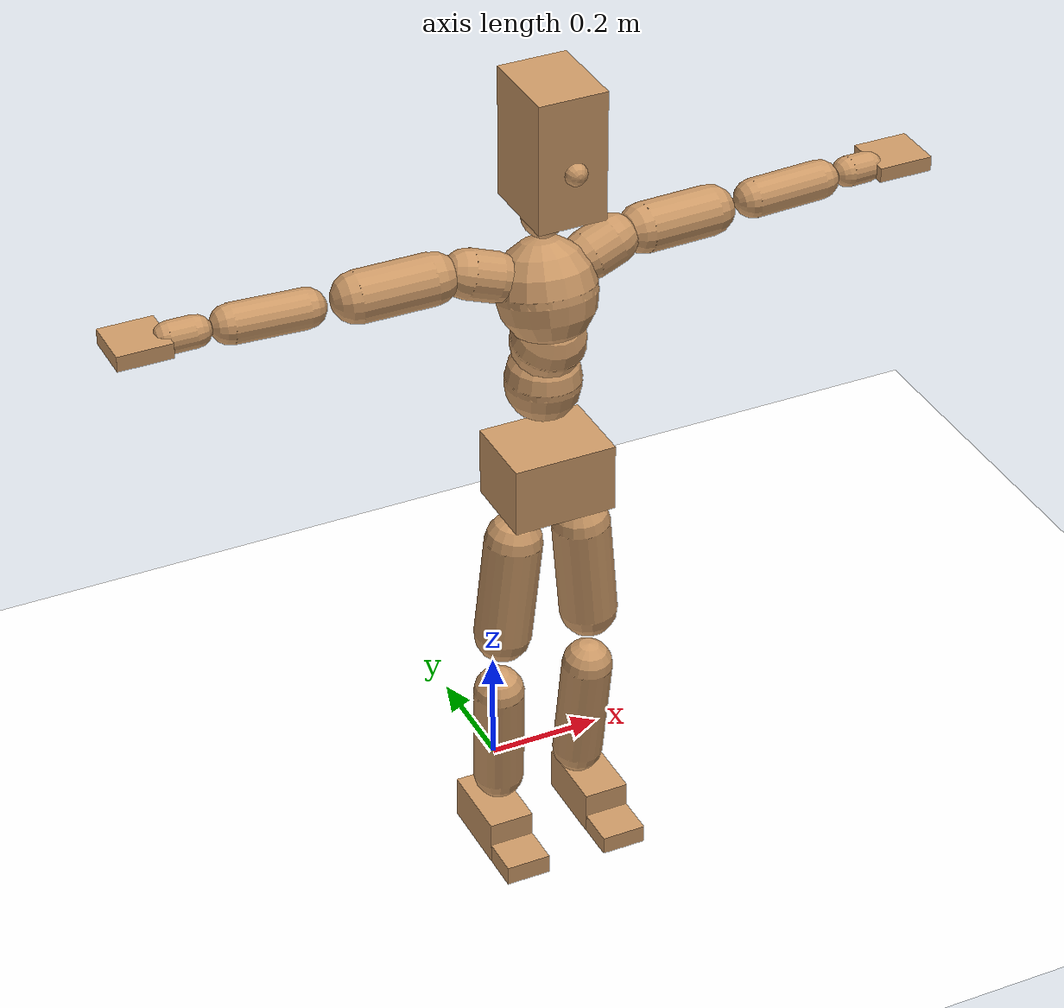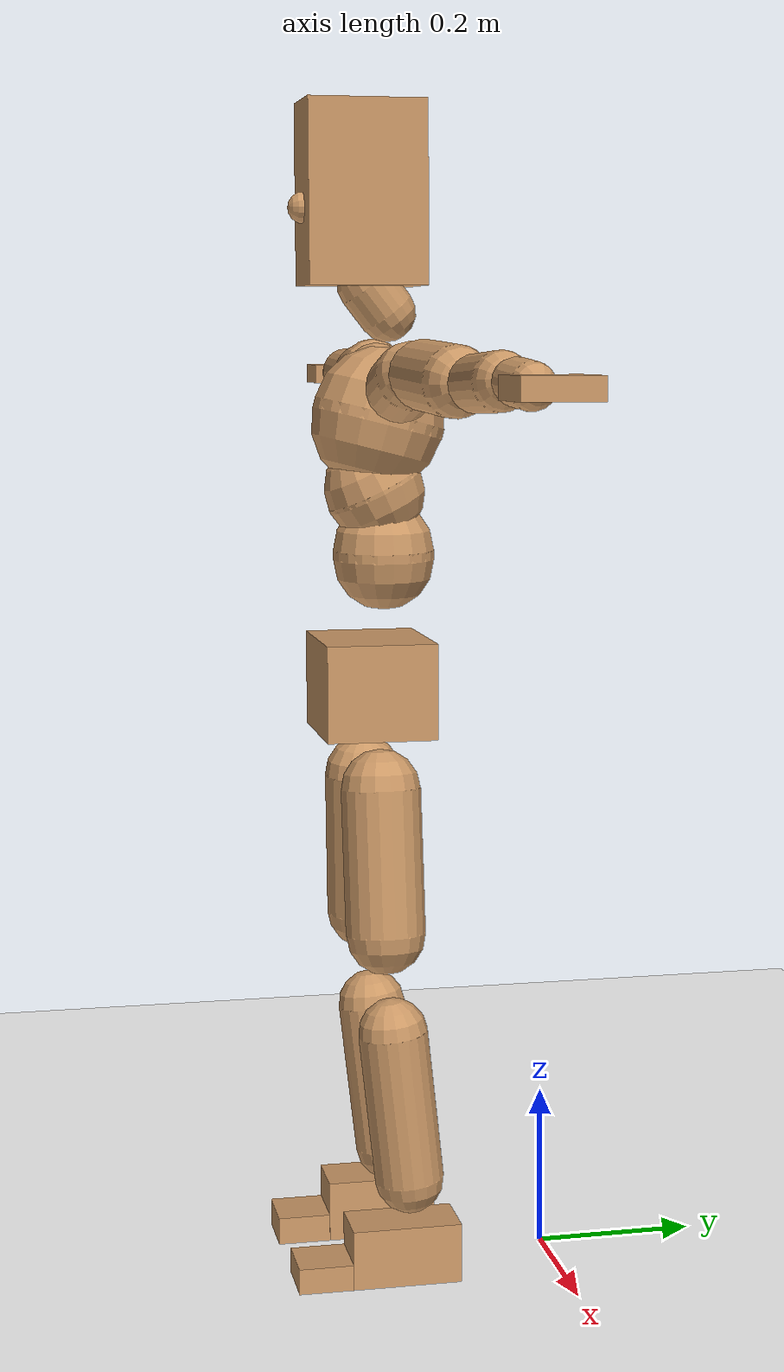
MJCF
<mujoco model="humanoid">
  <option integrator="implicitfast" />

  <visual>
    <global offwidth="1280" offheight="960" />
    <headlight active="1" ambient="0.34 0.34 0.34" diffuse="0.5 0.5 0.5" />
  </visual>

  <default>
    <joint damping="2" stiffness="2" armature="0.01" limited="true" solimplimit="0 .99 .01" />
    <geom condim="1" friction="0.7 0.005 0.0001" solimp=".99 .99 .003" solref="0.015 1" margin="0.001" rgba="0.8 0.6 .4 1" />
    <default class="smplcontact">
      <geom condim="3" friction="1. 0.005 0.0001" solref="0.015 1" solimp="0.98 0.98 0.001" priority="1" />
    </default>
    <default class="stiff_medium">
      <joint stiffness="10" />
    </default>
    <default class="stiff_medium_higher">
      <joint stiffness="50" />
    </default>
    <default class="stiff_high">
      <joint stiffness="100" />
    </default>
  </default>

  <asset>
    <texture type="skybox" builtin="gradient" rgb1="0.99 0.99 0.99" rgb2="0.608 0.828 0.892" width="100" />
    <texture builtin="flat" height="1278" mark="cross" markrgb="1 1 1" name="texgeom" random="0.01" rgb1="0.8 0.6 0.4" rgb2="0.8 0.6 0.4" type="cube" width="127" />
    <texture name="texplane" type="2d" builtin="checker" markrgb="1 1 1" rgb1="0.756 0.772 0.76" rgb2="0.6 0.6 0.6" width="100" height="100" />
    <material name="MatPlane" reflectance="0.5" texture="texplane" texrepeat="1 1" texuniform="true" />
    <material name="geom" texture="texgeom" texuniform="true" />
  </asset>

  <worldbody>
    <light name="tracking_light" pos="0 0 7" dir="0 0 -1" directional="true" cutoff="100" exponent="1" diffuse="1 1 1" specular="0.1 0.1 0.1" mode="trackcom" />
    <camera name="back" pos="0 3 2.4" xyaxes="-1 0 0 0 -1 2" mode="trackcom" />
    <camera name="side" pos="-3 0 2.4" xyaxes="0 -1 0 1 0 2" mode="trackcom" />
    <camera name="front_side" pos="-2.8 -2.8 0.8" xyaxes="0.5 -0.5 0 0.1 0.1 1" mode="trackcom" />
    <geom condim="3" name="floor" pos="0 0 0" rgba="1 1 1 1" size="100 100 .2" type="plane" material="MatPlane" />
    <body name="Pelvis" pos="-0.0018 -0.2233 0.74936" euler="90 0 0">
      <site name="Pelvis" size="0.01" />
      <freejoint name="Pelvis" />
      <geom type="box" pos="-0.0000 -0.0121 -0.0055" size="0.087658 0.059204 0.06806" quat="1.0000 0.0000 0.0000 0.0000" density="3165.830099" name="Pelvis" />
      <body name="L_Hip" pos="0.0556 -0.07312 -0.00544">
        <joint name="L_Hip_x" type="hinge" pos="0 0 0" axis="1 0 0" stiffness="4.096000000000002" range="-160.0 22.92" class="stiff_medium" damping="5.495360661503484" armature="0.0032768"/>
        <joint name="L_Hip_y" type="hinge" pos="0 0 0" axis="0 1 0" stiffness="4.096000000000002" range="-70.0 70.0" class="stiff_medium" damping="3.6635737743356582" armature="0.0032768000000000038"/>
        <joint name="L_Hip_z" type="hinge" pos="0 0 0" axis="0 0 1" stiffness="4.096000000000002" range="-28.65 90.0" class="stiff_medium" damping="3.663573774335656" armature="0.0032768"/>
        <geom type="capsule" density="2040.816327" fromto="0.00552 -0.06 -0.00072 0.02192 -0.24016 -0.00288" size="0.0492" name="L_Hip" />
        <body name="L_Knee" pos="0.02744 -0.30016 -0.0036">
          <joint name="L_Knee_x" type="hinge" pos="0 0 0" axis="1 0 0" range="-5.16 171.89" damping="2.9308590194685262" armature="0.0032768000000000033" stiffness="0.8192000000000004"/>
          <joint name="L_Knee_y" type="hinge" pos="0 0 0" axis="0 1 0" range="-4.58 6.88" damping="2.9308590194685253" armature="0.0032768000000000007" stiffness="0.8192000000000004"/>
          <joint name="L_Knee_z" type="hinge" pos="0 0 0" axis="0 0 1" range="-6.88 4.58" damping="2.9308590194685253" armature="0.0032768000000000007" stiffness="0.8192000000000004"/>
          <geom type="capsule" density="1234.567901" fromto="-0.00216 -0.06368 -0.00696 -0.00872 -0.25472 -0.028" size="0.04328" name="L_Knee" />
          <body name="L_Ankle" pos="-0.01088 -0.3184 -0.03496">
            <joint name="L_Ankle_x" type="hinge" pos="0 0 0" axis="1 0 0" range="-45.84 45.84" class="stiff_medium" damping="2.198144264601418" armature="0.003276800000000073" stiffness="4.096000000000002"/>
            <joint name="L_Ankle_y" type="hinge" pos="0 0 0" axis="0 1 0" range="-74.48 22.92" class="stiff_medium" damping="1.0990721323006971" armature="0.003276800000000002" stiffness="4.096000000000002"/>
            <joint name="L_Ankle_z" type="hinge" pos="0 0 0" axis="0 0 1" range="-4.58 4.58" class="stiff_medium" damping="2.198144264601353" armature="0.003276799999999879" stiffness="4.096000000000002"/>
            <geom type="box" pos="0.01864 -0.01912 0.01936" size="0.03864 0.03712 0.068" quat="1.0000 0.0000 0.0000 0.0000" density="449.071558" name="L_Ankle" class="smplcontact" />
            <body name="L_Toe" pos="0.02112 -0.04464 0.09544">
              <joint name="L_Toe_x" type="hinge" pos="0 0 0" axis="1 0 0" range="-91.67 22.92" armature="0.0032767999999999513" damping="0.7327147548671258" stiffness="0.8192000000000004"/>
              <joint name="L_Toe_y" type="hinge" pos="0 0 0" axis="0 1 0" range="-4.58 4.58" armature="0.0032767999999999864" damping="0.7327147548671298" stiffness="0.8192000000000004"/>
              <joint name="L_Toe_z" type="hinge" pos="0 0 0" axis="0 0 1" range="-4.58 4.58" armature="0.003276799999999476" damping="0.7327147548670726" stiffness="0.8192000000000004"/>
              <geom type="box" pos="-0.0024 0.0044 0.01984" size="0.03824 0.016 0.03968" quat="1.0000 0.0000 0.0000 0.0000" density="423.206892" name="L_Toe" class="smplcontact" />
            </body>
          </body>
        </body>
      </body>
      <body name="R_Hip" pos="-0.05416 -0.0724 -0.00344">
        <joint name="R_Hip_x" type="hinge" pos="0 0 0" axis="1 0 0" stiffness="4.096000000000002" range="-160.0 22.92" class="stiff_medium" damping="5.495360661503484" armature="0.0032768"/>
        <joint name="R_Hip_y" type="hinge" pos="0 0 0" axis="0 1 0" stiffness="4.096000000000002" range="-70.0 70.0" class="stiff_medium" damping="3.6635737743356582" armature="0.0032768000000000038"/>
        <joint name="R_Hip_z" type="hinge" pos="0 0 0" axis="0 0 1" stiffness="4.096000000000002" range="-90.0 28.65" class="stiff_medium" damping="3.663573774335656" armature="0.0032768"/>
        <geom type="capsule" density="2040.816327" fromto="-0.00616 -0.0612 -0.00144 -0.02448 -0.24488 -0.00568" size="0.04848" name="R_Hip" />
        <body name="R_Knee" pos="-0.03064 -0.30608 -0.00712">
          <joint name="R_Knee_x" type="hinge" pos="0 0 0" axis="1 0 0" range="-5.16 171.89" damping="2.9308590194685262" armature="0.0032768000000000033" stiffness="0.8192000000000004"/>
          <joint name="R_Knee_y" type="hinge" pos="0 0 0" axis="0 1 0" range="-6.88 4.58" damping="2.9308590194685253" armature="0.0032768000000000007" stiffness="0.8192000000000004"/>
          <joint name="R_Knee_z" type="hinge" pos="0 0 0" axis="0 0 1" range="-4.58 6.88" damping="2.9308590194685253" armature="0.0032768000000000007" stiffness="0.8192000000000004"/>
          <geom type="capsule" density="1234.567901" fromto="0.00256 -0.06376 -0.0068 0.01008 -0.25496 -0.02704" size="0.04328" name="R_Knee" />
          <body name="R_Ankle" pos="0.01264 -0.31872 -0.03384">
            <joint name="R_Ankle_x" type="hinge" pos="0 0 0" axis="1 0 0" range="-45.84 45.84" class="stiff_medium" damping="2.198144264601418" armature="0.003276800000000073" stiffness="4.096000000000002"/>
            <joint name="R_Ankle_y" type="hinge" pos="0 0 0" axis="0 1 0" range="-22.92 74.48" class="stiff_medium" damping="1.0990721323006971" armature="0.003276800000000002" stiffness="4.096000000000002"/>
            <joint name="R_Ankle_z" type="hinge" pos="0 0 0" axis="0 0 1" range="-4.58 4.58" class="stiff_medium" damping="2.198144264601353" armature="0.003276799999999879" stiffness="4.096000000000002"/>
            <geom type="box" pos="-0.01696 -0.01392 0.02048" size="0.03864 0.03824 0.0692" quat="1.0000 0.0000 0.0000 0.0000" density="434.700981" name="R_Ankle" class="smplcontact" />
            <body name="R_Toe" pos="-0.02032 -0.03848 0.09864">
              <joint name="R_Toe_x" type="hinge" pos="0 0 0" axis="1 0 0" range="-91.67 22.92" armature="0.0032767999999999513" damping="0.7327147548671258" stiffness="0.8192000000000004"/>
              <joint name="R_Toe_y" type="hinge" pos="0 0 0" axis="0 1 0" range="-4.58 4.58" armature="0.0032767999999999864" damping="0.7327147548671298" stiffness="0.8192000000000004"/>
              <joint name="R_Toe_z" type="hinge" pos="0 0 0" axis="0 0 1" range="-4.58 4.58" armature="0.003276799999999476" damping="0.7327147548670726" stiffness="0.8192000000000004"/>
              <geom type="box" pos="0.00336 0.0036 0.01816" size="0.03832 0.01728 0.03944" quat="1.0000 0.0000 0.0000 0.0000" density="407.384095" name="R_Toe" class="smplcontact" />
            </body>
          </body>
        </body>
      </body>
      <body name="Torso" pos="-0.002125 0.09265 -0.022695">
        <joint name="Torso_x" type="hinge" pos="0 0 0" axis="1 0 0" range="-25.78 57.3" class="stiff_medium" damping="7.7770351382533445" armature="0.004997753270858832" stiffness="5.378619130434782"/>
        <joint name="Torso_y" type="hinge" pos="0 0 0" axis="0 1 0" range="-57.3 57.3" class="stiff_high" damping="8.569140241118422" armature="0.0033371549015731626" stiffness="55.009556521739135"/>
        <joint name="Torso_z" type="hinge" pos="0 0 0" axis="0 0 1" range="-34.38 34.38" class="stiff_high" damping="9.649387626927568" armature="0.004438052340707504" stiffness="52.45019347826088"/>
        <geom type="capsule" density="2040.816327" fromto="0.002125 0.05168 0.000425 0.00255 0.063155 0.00051" size="0.063058" name="Torso" />
        <body name="Spine" pos="0.004675 0.11492 0.000935">
          <joint name="Spine_x" type="hinge" pos="0 0 0" axis="1 0 0" stiffness="5.503493829787235" range="-25.78 57.3" class="stiff_medium" damping="8.263270562992723" armature="0.005514205461237325"/>
          <joint name="Spine_y" type="hinge" pos="0 0 0" axis="0 1 0" stiffness="5.561043999999999" range="-57.3 57.3" class="stiff_high" damping="3.444451103995636" armature="0.003333525202230675"/>
          <joint name="Spine_z" type="hinge" pos="0 0 0" axis="0 0 1" stiffness="11.305458222222223" range="-34.38 34.38" class="stiff_high" damping="5.935301302942196" armature="0.004327777008270279"/>
          <geom type="capsule" density="2040.816327" fromto="0.000595 0.02023 0.00969 0.00068 0.024735 0.0119" size="0.06191" name="Spine" />
          <body name="Chest" pos="0.001275 0.044965 0.02159">
            <joint name="Chest_x" type="hinge" pos="0 0 0" axis="1 0 0" stiffness="5.889838604651163" range="-25.78 57.3" class="stiff_medium" damping="8.760080136629732" armature="0.005790689064577125"/>
            <joint name="Chest_y" type="hinge" pos="0 0 0" axis="0 1 0" stiffness="5.319412222222223" range="-57.3 57.3" class="stiff_high" damping="3.364305562477724" armature="0.0033246600625448626"/>
            <joint name="Chest_z" type="hinge" pos="0 0 0" axis="0 0 1" stiffness="11.696885238095238" range="-34.38 34.38" class="stiff_high" damping="5.972581782994171" armature="0.0042356638384730486"/>
            <geom type="capsule" density="2040.816327" fromto="-0.000765 0.05797 -0.014705 -0.00085 0.070805 -0.01802" size="0.082164" name="Chest" />
            <body name="Neck" pos="-0.00238 0.181815 -0.036465">
              <joint name="Neck_x" type="hinge" pos="0 0 0" axis="1 0 0" range="-28.65 57.3" class="stiff_medium_higher" damping="8.312345493042903" armature="0.008336376429309785" stiffness="41.44191914893618"/>
              <joint name="Neck_y" type="hinge" pos="0 0 0" axis="0 1 0" range="-40.11 40.11" class="stiff_medium_higher" damping="8.0689197780682" armature="0.007800146146026729" stiffness="41.73477340425531"/>
              <joint name="Neck_z" type="hinge" pos="0 0 0" axis="0 0 1" range="-40.11 40.11" class="stiff_medium_higher" damping="8.408248307939536" armature="0.008357652278691877" stiffness="42.29575319148937"/>
              <geom type="capsule" density="1000" fromto="0.00085 0.01105 0.008755 0.003485 0.0442 0.034935" size="0.035752" name="Neck" />
              <body name="Head" pos="0.0052 0.065 0.0513">
                <joint name="Head_x" type="hinge" pos="0 0 0" axis="1 0 0" range="-28.65 57.3" class="stiff_medium_higher" damping="1.67679116237338" armature="0.008198363033134487" stiffness="42.868749999999984"/>
                <joint name="Head_y" type="hinge" pos="0 0 0" axis="0 1 0" range="-40.11 40.11" class="stiff_medium_higher" damping="1.6330638083935347" armature="0.0077763446633176735" stiffness="42.868749999999984"/>
                <joint name="Head_z" type="hinge" pos="0 0 0" axis="0 0 1" range="-40.11 40.11" class="stiff_medium_higher" damping="1.6789266984104894" armature="0.008219258955053352" stiffness="42.868749999999984"/>
                <geom type="box" pos="-0.0042 0.0876 -0.0116" size="0.05757 0.10963 0.0722" quat="1.0000 0.0000 0.0000 0.0000" density="1018.069894" name="Head" />
                <geom type="capsule" name="nose" size="0.019 0.0095" pos="0 0.07 0.05" quat="1 0 0 0" mass="0" contype="0" conaffinity="0" />
              </body>
            </body>
            <body name="L_Thorax" pos="0.06304 0.09736 -0.02728">
              <joint name="L_Thorax_x" type="hinge" pos="0 0 0" axis="1 0 0" range="-10.89 4.58" class="stiff_medium_higher" damping="7.327147548671352" armature="0.0032768000000000354" stiffness="20.48000000000001"/>
              <joint name="L_Thorax_y" type="hinge" pos="0 0 0" axis="0 1 0" range="-28.65 17.19" class="stiff_medium_higher" damping="7.327147548671312" armature="0.0032767999999999994" stiffness="20.48000000000001"/>
              <joint name="L_Thorax_z" type="hinge" pos="0 0 0" axis="0 0 1" range="-31.51 40.11" class="stiff_medium_higher" damping="7.327147548671312" armature="0.0032767999999999994" stiffness="20.48000000000001"/>
              <geom type="capsule" density="1000" fromto="0.01456 0.00488 -0.00144 0.05824 0.01952 -0.00568" size="0.04168" name="L_Thorax" />
              <body name="L_Shoulder" pos="0.0728 0.0244 -0.00712">
                <joint name="L_Shoulder_x" type="hinge" pos="0 0 0" axis="1 0 0" range="-97.4 97.4" class="stiff_medium" damping="2.1981442646014107" armature="0.00327680000000005" stiffness="4.096000000000002"/>
                <joint name="L_Shoulder_y" type="hinge" pos="0 0 0" axis="0 1 0" range="-108.86 80.21" class="stiff_medium" damping="2.198144264601394" armature="0.0032768" stiffness="4.096000000000002"/>
                <joint name="L_Shoulder_z" type="hinge" pos="0 0 0" axis="0 0 1" range="-97.4 85.94" class="stiff_medium" damping="2.1981442646013942" armature="0.0032768000000000007" stiffness="4.096000000000002"/>
                <geom type="capsule" density="1000" fromto="0.04152 -0.00208 -0.0044 0.16616 -0.00816 -0.0176" size="0.04136" name="L_Shoulder" />
                <body name="L_Elbow" pos="0.20768 -0.01024 -0.022">
                  <joint name="L_Elbow_x" type="hinge" pos="0 0 0" axis="1 0 0" range="-17.19 4.58" damping="1.831786887167842" armature="0.0032768000000000497" stiffness="0.8192000000000004"/>
                  <joint name="L_Elbow_y" type="hinge" pos="0 0 0" axis="0 1 0" range="-180.0 17.19" damping="1.8317868871678296" armature="0.0032768000000000046" stiffness="0.8192000000000004"/>
                  <joint name="L_Elbow_z" type="hinge" pos="0 0 0" axis="0 0 1" range="-100.84 4.58" damping="1.8317868871678282" armature="0.0032768000000000007" stiffness="0.8192000000000004"/>
                  <geom type="capsule" density="1000" fromto="0.03984 0.00144 -0.00016 0.15952 0.00576 -0.00072" size="0.0324" name="L_Elbow" />
                  <body name="L_Wrist" pos="0.19936 0.0072 -0.00096">
                    <joint name="L_Wrist_x" type="hinge" pos="0 0 0" axis="1 0 0" range="-180.0 22.92" armature="0.0032767999999999582" damping="0.7327147548671266" stiffness="0.8192000000000004"/>
                    <joint name="L_Wrist_y" type="hinge" pos="0 0 0" axis="0 1 0" range="-17.19 17.19" armature="0.003276799999999971" damping="0.732714754867128" stiffness="0.8192000000000004"/>
                    <joint name="L_Wrist_z" type="hinge" pos="0 0 0" axis="0 0 1" range="-22.92 22.92" armature="0.0032767999999999786" damping="0.7327147548671289" stiffness="0.8192000000000004"/>
                    <geom type="capsule" density="1000" fromto="0.01344 -0.00128 -0.0024 0.05376 -0.0052 -0.0096" size="0.02544" name="L_Wrist" class="smplcontact" />
                    <body name="L_Hand" pos="0.0672 -0.00656 -0.01192">
                      <joint name="L_Hand_x" type="hinge" pos="0 0 0" axis="1 0 0" range="-17.19 17.19" armature="0.00327679999999994" damping="0.7327147548671246" stiffness="0.8192000000000004"/>
                      <joint name="L_Hand_y" type="hinge" pos="0 0 0" axis="0 1 0" range="-51.57 51.57" armature="0.003276800000000062" damping="0.7327147548671381" stiffness="0.8192000000000004"/>
                      <joint name="L_Hand_z" type="hinge" pos="0 0 0" axis="0 0 1" range="-91.67 91.67" armature="0.0032768000000000194" damping="0.7327147548671333" stiffness="0.8192000000000004"/>
                      <geom type="box" pos="0.03944 0.0008 -0.00464" size="0.0468 0.01264 0.04304" quat="1.0000 0.0000 0.0000 0.0000" density="400.552564" name="L_Hand" class="smplcontact" />
                    </body>
                  </body>
                </body>
              </body>
            </body>
            <body name="R_Thorax" pos="-0.06544 0.09504 -0.03088">
              <joint name="R_Thorax_x" type="hinge" pos="0 0 0" axis="1 0 0" range="-10.89 4.58" class="stiff_medium_higher" damping="7.327147548671352" armature="0.0032768000000000354" stiffness="20.48000000000001"/>
              <joint name="R_Thorax_y" type="hinge" pos="0 0 0" axis="0 1 0" range="-17.19 28.65" class="stiff_medium_higher" damping="7.327147548671312" armature="0.0032767999999999994" stiffness="20.48000000000001"/>
              <joint name="R_Thorax_z" type="hinge" pos="0 0 0" axis="0 0 1" range="-40.11 31.51" class="stiff_medium_higher" damping="7.327147548671312" armature="0.0032767999999999994" stiffness="20.48000000000001"/>
              <geom type="capsule" density="1000" fromto="-0.01536 0.0052 -0.00144 -0.06144 0.0208 -0.00584" size="0.04088" name="R_Thorax" />
              <body name="R_Shoulder" pos="-0.0768 0.02608 -0.00728">
                <joint name="R_Shoulder_x" type="hinge" pos="0 0 0" axis="1 0 0" range="-97.4 97.4" class="stiff_medium" damping="2.1981442646014107" armature="0.00327680000000005" stiffness="4.096000000000002"/>
                <joint name="R_Shoulder_y" type="hinge" pos="0 0 0" axis="0 1 0" range="-80.21 108.86" class="stiff_medium" damping="2.198144264601394" armature="0.0032768" stiffness="4.096000000000002"/>
                <joint name="R_Shoulder_z" type="hinge" pos="0 0 0" axis="0 0 1" range="-85.94 97.4" class="stiff_medium" damping="2.1981442646013942" armature="0.0032768000000000007" stiffness="4.096000000000002"/>
                <geom type="capsule" density="1000" fromto="-0.04056 -0.00216 -0.00344 -0.1624 -0.00856 -0.01368" size="0.04248" name="R_Shoulder" />
                <body name="R_Elbow" pos="-0.20296 -0.01064 -0.01712">
                  <joint name="R_Elbow_x" type="hinge" pos="0 0 0" axis="1 0 0" range="-17.19 4.58" damping="1.831786887167842" armature="0.0032768000000000497" stiffness="0.8192000000000004"/>
                  <joint name="R_Elbow_y" type="hinge" pos="0 0 0" axis="0 1 0" range="-17.19 180.0" damping="1.8317868871678296" armature="0.0032768000000000046" stiffness="0.8192000000000004"/>
                  <joint name="R_Elbow_z" type="hinge" pos="0 0 0" axis="0 0 1" range="-4.58 100.84" damping="1.8317868871678282" armature="0.0032768000000000007" stiffness="0.8192000000000004"/>
                  <geom type="capsule" density="1000" fromto="-0.04088 0.00128 -0.00088 -0.16336 0.00496 -0.00352" size="0.03264" name="R_Elbow" />
                  <body name="R_Wrist" pos="-0.20424 0.00624 -0.00448">
                    <joint name="R_Wrist_x" type="hinge" pos="0 0 0" axis="1 0 0" range="-180.0 22.92" armature="0.0032767999999999582" damping="0.7327147548671266" stiffness="0.8192000000000004"/>
                    <joint name="R_Wrist_y" type="hinge" pos="0 0 0" axis="0 1 0" range="-17.19 17.19" armature="0.003276799999999971" damping="0.732714754867128" stiffness="0.8192000000000004"/>
                    <joint name="R_Wrist_z" type="hinge" pos="0 0 0" axis="0 0 1" range="-22.92 22.92" armature="0.0032767999999999786" damping="0.7327147548671289" stiffness="0.8192000000000004"/>
                    <geom type="capsule" density="1000" fromto="-0.01352 -0.00096 -0.00168 -0.05416 -0.00392 -0.00664" size="0.02608" name="R_Wrist" class="smplcontact" />
                    <body name="R_Hand" pos="-0.06768 -0.00488 -0.00824">
                      <joint name="R_Hand_x" type="hinge" pos="0 0 0" axis="1 0 0" range="-17.19 17.19" armature="0.00327679999999994" damping="0.7327147548671246" stiffness="0.8192000000000004"/>
                      <joint name="R_Hand_y" type="hinge" pos="0 0 0" axis="0 1 0" range="-51.57 51.57" armature="0.003276800000000062" damping="0.7327147548671381" stiffness="0.8192000000000004"/>
                      <joint name="R_Hand_z" type="hinge" pos="0 0 0" axis="0 0 1" range="-91.67 91.67" armature="0.0032768000000000194" damping="0.7327147548671333" stiffness="0.8192000000000004"/>
                      <geom type="box" pos="-0.03696 -0.00072 -0.00632" size="0.04552 0.01312 0.04368" quat="1.0000 0.0000 0.0000 0.0000" density="403.679611" name="R_Hand" class="smplcontact" />
                    </body>
                  </body>
                </body>
              </body>
            </body>
          </body>
        </body>
      </body>
    </body>
  </worldbody>
  <actuator>
    <general name="L_Hip_x" joint="L_Hip_x" biastype="affine" gainprm="117.69039425426334" biasprm="-88.19702189139743 -73.72800000000004 -0.7327147548671312" ctrllimited="true" ctrlrange="-1 1" forcerange="-147.45600000000007 147.45600000000007" />
    <general name="L_Hip_y" joint="L_Hip_y" biastype="affine" gainprm="90.07574456372659" biasprm="0.0 -73.72800000000004 -0.7327147548671317" ctrllimited="true" ctrlrange="-1 1" forcerange="-147.45600000000007 147.45600000000007" />
    <general name="L_Hip_z" joint="L_Hip_z" biastype="affine" gainprm="76.33919351775829" biasprm="39.4724780641759 -73.72800000000004 -0.7327147548671312" ctrllimited="true" ctrlrange="-1 1" forcerange="-147.45600000000007 147.45600000000007" />
    <general name="L_Knee_x" joint="L_Knee_x" biastype="affine" gainprm="113.91364696434138" biasprm="107.27377779364382 -73.72800000000004 -0.7327147548671316" ctrllimited="true" ctrlrange="-1 1" forcerange="-147.45600000000007 147.45600000000007" />
    <general name="L_Knee_y" joint="L_Knee_y" biastype="affine" gainprm="7.373343090716476" biasprm="1.4798158035469369 -73.72800000000004 -0.7327147548671313" ctrllimited="true" ctrlrange="-1 1" forcerange="-147.45600000000007 147.45600000000007" />
    <general name="L_Knee_z" joint="L_Knee_z" biastype="affine" gainprm="7.373343090716476" biasprm="-1.4798158035469369 -73.72800000000004 -0.7327147548671313" ctrllimited="true" ctrlrange="-1 1" forcerange="-147.45600000000007 147.45600000000007" />
    <general name="L_Ankle_x" joint="L_Ankle_x" biastype="affine" gainprm="29.493372362865912" biasprm="0.0 -36.86400000000002 -0.7327147548671394" ctrllimited="true" ctrlrange="-1 1" forcerange="-73.72800000000004 73.72800000000004" />
    <general name="L_Ankle_y" joint="L_Ankle_y" biastype="affine" gainprm="31.333491144667754" biasprm="-16.586804963234798 -36.86400000000002 -0.7327147548671314" ctrllimited="true" ctrlrange="-1 1" forcerange="-73.72800000000004 73.72800000000004" />
    <general name="L_Ankle_z" joint="L_Ankle_z" biastype="affine" gainprm="2.9467636435847697" biasprm="0.0 -36.86400000000002 -0.7327147548671177" ctrllimited="true" ctrlrange="-1 1" forcerange="-73.72800000000004 73.72800000000004" />
    <general name="L_Toe_x" joint="L_Toe_x" biastype="affine" gainprm="29.490798770164083" biasprm="-17.693449825017723 -29.491200000000013 -0.2930859019468503" ctrllimited="true" ctrlrange="-1 1" forcerange="-58.98240000000003 58.98240000000003" />
    <general name="L_Toe_y" joint="L_Toe_y" biastype="affine" gainprm="2.357410914867816" biasprm="0.0 -29.491200000000013 -0.2930859019468519" ctrllimited="true" ctrlrange="-1 1" forcerange="-58.98240000000003 58.98240000000003" />
    <general name="L_Toe_z" joint="L_Toe_z" biastype="affine" gainprm="2.357410914867816" biasprm="0.0 -29.491200000000013 -0.29308590194682904" ctrllimited="true" ctrlrange="-1 1" forcerange="-58.98240000000003 58.98240000000003" />
    <general name="R_Hip_x" joint="R_Hip_x" biastype="affine" gainprm="117.69039425426334" biasprm="-88.19702189139743 -73.72800000000004 -0.7327147548671312" ctrllimited="true" ctrlrange="-1 1" forcerange="-147.45600000000007 147.45600000000007" />
    <general name="R_Hip_y" joint="R_Hip_y" biastype="affine" gainprm="90.07574456372659" biasprm="0.0 -73.72800000000004 -0.7327147548671317" ctrllimited="true" ctrlrange="-1 1" forcerange="-147.45600000000007 147.45600000000007" />
    <general name="R_Hip_z" joint="R_Hip_z" biastype="affine" gainprm="76.33919351775829" biasprm="-39.4724780641759 -73.72800000000004 -0.7327147548671312" ctrllimited="true" ctrlrange="-1 1" forcerange="-147.45600000000007 147.45600000000007" />
    <general name="R_Knee_x" joint="R_Knee_x" biastype="affine" gainprm="113.91364696434138" biasprm="107.27377779364382 -73.72800000000004 -0.7327147548671316" ctrllimited="true" ctrlrange="-1 1" forcerange="-147.45600000000007 147.45600000000007" />
    <general name="R_Knee_y" joint="R_Knee_y" biastype="affine" gainprm="7.373343090716476" biasprm="-1.4798158035469369 -73.72800000000004 -0.7327147548671313" ctrllimited="true" ctrlrange="-1 1" forcerange="-147.45600000000007 147.45600000000007" />
    <general name="R_Knee_z" joint="R_Knee_z" biastype="affine" gainprm="7.373343090716476" biasprm="1.4798158035469369 -73.72800000000004 -0.7327147548671313" ctrllimited="true" ctrlrange="-1 1" forcerange="-147.45600000000007 147.45600000000007" />
    <general name="R_Ankle_x" joint="R_Ankle_x" biastype="affine" gainprm="29.493372362865912" biasprm="0.0 -36.86400000000002 -0.7327147548671394" ctrllimited="true" ctrlrange="-1 1" forcerange="-73.72800000000004 73.72800000000004" />
    <general name="R_Ankle_y" joint="R_Ankle_y" biastype="affine" gainprm="31.333491144667754" biasprm="16.586804963234798 -36.86400000000002 -0.7327147548671314" ctrllimited="true" ctrlrange="-1 1" forcerange="-73.72800000000004 73.72800000000004" />
    <general name="R_Ankle_z" joint="R_Ankle_z" biastype="affine" gainprm="2.9467636435847697" biasprm="0.0 -36.86400000000002 -0.7327147548671177" ctrllimited="true" ctrlrange="-1 1" forcerange="-73.72800000000004 73.72800000000004" />
    <general name="R_Toe_x" joint="R_Toe_x" biastype="affine" gainprm="29.490798770164083" biasprm="-17.693449825017723 -29.491200000000013 -0.2930859019468503" ctrllimited="true" ctrlrange="-1 1" forcerange="-58.98240000000003 58.98240000000003" />
    <general name="R_Toe_y" joint="R_Toe_y" biastype="affine" gainprm="2.357410914867816" biasprm="0.0 -29.491200000000013 -0.2930859019468519" ctrllimited="true" ctrlrange="-1 1" forcerange="-58.98240000000003 58.98240000000003" />
    <general name="R_Toe_z" joint="R_Toe_z" biastype="affine" gainprm="2.357410914867816" biasprm="0.0 -29.491200000000013 -0.29308590194682904" ctrllimited="true" ctrlrange="-1 1" forcerange="-58.98240000000003 58.98240000000003" />
    <general name="Torso_x" joint="Torso_x" biastype="affine" gainprm="93.5892342132093" biasprm="35.50713363505484 -129.08685913043476 -2.0738760368675586" ctrllimited="true" ctrlrange="-1 1" forcerange="-193.63028869565215 193.63028869565215" />
    <general name="Torso_y" joint="Torso_y" biastype="affine" gainprm="132.0326606454891" biasprm="0.0 -132.0229356521739 -1.7138280482236843" ctrllimited="true" ctrlrange="-1 1" forcerange="-198.03440347826088 198.03440347826088" />
    <general name="Torso_z" joint="Torso_z" biastype="affine" gainprm="75.53384212689006" biasprm="0.0 -125.8804643478261 -1.9298775253855138" ctrllimited="true" ctrlrange="-1 1" forcerange="-188.82069652173917 188.82069652173917" />
    <general name="Spine_x" joint="Spine_x" biastype="affine" gainprm="95.76208326639296" biasprm="36.33149812899261 -132.08385191489364 -2.2035388167980594" ctrllimited="true" ctrlrange="-1 1" forcerange="-198.12577787234045 198.12577787234045" />
    <general name="Spine_y" joint="Spine_y" biastype="affine" gainprm="133.47488722190852" biasprm="0.0 -133.46505599999998 -1.722225551997818" ctrllimited="true" ctrlrange="-1 1" forcerange="-200.19758399999998 200.19758399999998" />
    <general name="Spine_z" joint="Spine_z" biastype="affine" gainprm="81.40529518574803" biasprm="0.0 -135.66549866666668 -1.9784337676473986" ctrllimited="true" ctrlrange="-1 1" forcerange="-203.498248 203.498248" />
    <general name="Chest_x" joint="Chest_x" biastype="affine" gainprm="102.48457295100222" biasprm="38.8819660497784 -141.3561265116279 -2.3360213697679284" ctrllimited="true" ctrlrange="-1 1" forcerange="-212.03418976744186 212.03418976744186" />
    <general name="Chest_y" joint="Chest_y" biastype="affine" gainprm="127.67529738084305" biasprm="0.0 -127.66589333333334 -1.682152781238862" ctrllimited="true" ctrlrange="-1 1" forcerange="-191.49884000000003 191.49884000000003" />
    <general name="Chest_z" joint="Chest_z" biastype="affine" gainprm="84.22377729805962" biasprm="0.0 -140.36262285714287 -1.9908605943313904" ctrllimited="true" ctrlrange="-1 1" forcerange="-210.5439342857143 210.5439342857143" />
    <general name="Neck_x" joint="Neck_x" biastype="affine" gainprm="22.380284781946237" biasprm="7.460094927315412 -29.83818178723405 -0.6649876394434323" ctrllimited="true" ctrlrange="-1 1" forcerange="-59.6763635744681 59.6763635744681" />
    <general name="Neck_y" joint="Neck_y" biastype="affine" gainprm="21.035875213478363" biasprm="0.0 -30.049036851063825 -0.6455135822454561" ctrllimited="true" ctrlrange="-1 1" forcerange="-60.09807370212765 60.09807370212765" />
    <general name="Neck_z" joint="Neck_z" biastype="affine" gainprm="21.318629852810755" biasprm="0.0 -30.452942297872344 -0.6726598646351629" ctrllimited="true" ctrlrange="-1 1" forcerange="-60.90588459574469 60.90588459574469" />
    <general name="Head_x" joint="Head_x" biastype="affine" gainprm="15.43388679785897" biasprm="5.144628932619656 -20.57699999999999 -0.670716464949352" ctrllimited="true" ctrlrange="-1 1" forcerange="-41.15399999999998 41.15399999999998" />
    <general name="Head_y" joint="Head_y" biastype="affine" gainprm="14.404961011335038" biasprm="0.0 -20.57699999999999 -0.6532255233574139" ctrllimited="true" ctrlrange="-1 1" forcerange="-41.15399999999998 41.15399999999998" />
    <general name="Head_z" joint="Head_z" biastype="affine" gainprm="14.404961011335038" biasprm="0.0 -20.57699999999999 -0.6715706793641958" ctrllimited="true" ctrlrange="-1 1" forcerange="-41.15399999999998 41.15399999999998" />
    <general name="L_Thorax_x" joint="L_Thorax_x" biastype="affine" gainprm="6.635579849527858" biasprm="-2.7065616580814997 -49.15200000000002 -0.5861718038937082" ctrllimited="true" ctrlrange="-1 1" forcerange="-98.30400000000004 98.30400000000004" />
    <general name="L_Thorax_y" joint="L_Thorax_y" biastype="affine" gainprm="19.662248241910603" biasprm="-4.915562060477651 -49.15200000000002 -0.586171803893705" ctrllimited="true" ctrlrange="-1 1" forcerange="-98.30400000000004 98.30400000000004" />
    <general name="L_Thorax_z" joint="L_Thorax_z" biastype="affine" gainprm="30.72011821740047" biasprm="3.6888162059430885 -49.15200000000002 -0.586171803893705" ctrllimited="true" ctrlrange="-1 1" forcerange="-98.30400000000004 98.30400000000004" />
    <general name="L_Shoulder_x" joint="L_Shoulder_x" biastype="affine" gainprm="33.42239055431227" biasprm="0.0 -19.66080000000001 -0.5861718038937095" ctrllimited="true" ctrlrange="-1 1" forcerange="-39.32160000000002 39.32160000000002" />
    <general name="L_Shoulder_y" joint="L_Shoulder_y" biastype="affine" gainprm="32.439278142216736" biasprm="-4.915562060477651 -19.66080000000001 -0.586171803893705" ctrllimited="true" ctrlrange="-1 1" forcerange="-39.32160000000002 39.32160000000002" />
    <general name="L_Shoulder_z" joint="L_Shoulder_z" biastype="affine" gainprm="31.456165730121203" biasprm="-1.9662248241910647 -19.66080000000001 -0.586171803893705" ctrllimited="true" ctrlrange="-1 1" forcerange="-39.32160000000002 39.32160000000002" />
    <general name="L_Elbow_x" joint="L_Elbow_x" biastype="affine" gainprm="5.602711311863794" biasprm="-3.245300396995979 -29.491200000000013 -0.29308590194685474" ctrllimited="true" ctrlrange="-1 1" forcerange="-58.98240000000003 58.98240000000003" />
    <general name="L_Elbow_y" joint="L_Elbow_y" biastype="affine" gainprm="50.74867448720356" biasprm="-41.90066277834379 -29.491200000000013 -0.29308590194685274" ctrllimited="true" ctrlrange="-1 1" forcerange="-58.98240000000003 58.98240000000003" />
    <general name="L_Elbow_z" joint="L_Elbow_z" biastype="affine" gainprm="27.130814262594445" biasprm="-24.773403347726635 -29.491200000000013 -0.2930859019468525" ctrllimited="true" ctrlrange="-1 1" forcerange="-58.98240000000003 58.98240000000003" />
    <general name="L_Wrist_x" joint="L_Wrist_x" biastype="affine" gainprm="8.70389051755781" biasprm="-6.737665693366749 -4.915200000000002 -0.29308590194685064" ctrllimited="true" ctrlrange="-1 1" forcerange="-9.830400000000004 9.830400000000004" />
    <general name="L_Wrist_y" joint="L_Wrist_y" biastype="affine" gainprm="1.4746686181432955" biasprm="0.0 -4.915200000000002 -0.2930859019468512" ctrllimited="true" ctrlrange="-1 1" forcerange="-9.830400000000004 9.830400000000004" />
    <general name="L_Wrist_z" joint="L_Wrist_z" biastype="affine" gainprm="1.9662248241910607" biasprm="0.0 -4.915200000000002 -0.2930859019468516" ctrllimited="true" ctrlrange="-1 1" forcerange="-9.830400000000004 9.830400000000004" />
    <general name="L_Hand_x" joint="L_Hand_x" biastype="affine" gainprm="1.4746686181432955" biasprm="0.0 -4.915200000000002 -0.29308590194684986" ctrllimited="true" ctrlrange="-1 1" forcerange="-9.830400000000004 9.830400000000004" />
    <general name="L_Hand_y" joint="L_Hand_y" biastype="affine" gainprm="4.424005854429886" biasprm="0.0 -4.915200000000002 -0.29308590194685524" ctrllimited="true" ctrlrange="-1 1" forcerange="-9.830400000000004 9.830400000000004" />
    <general name="L_Hand_z" joint="L_Hand_z" biastype="affine" gainprm="7.864041432530301" biasprm="0.0 -4.915200000000002 -0.29308590194685336" ctrllimited="true" ctrlrange="-1 1" forcerange="-9.830400000000004 9.830400000000004" />
    <general name="R_Thorax_x" joint="R_Thorax_x" biastype="affine" gainprm="6.635579849527858" biasprm="-2.7065616580814997 -49.15200000000002 -0.5861718038937082" ctrllimited="true" ctrlrange="-1 1" forcerange="-98.30400000000004 98.30400000000004" />
    <general name="R_Thorax_y" joint="R_Thorax_y" biastype="affine" gainprm="19.662248241910603" biasprm="4.915562060477648 -49.15200000000002 -0.586171803893705" ctrllimited="true" ctrlrange="-1 1" forcerange="-98.30400000000004 98.30400000000004" />
    <general name="R_Thorax_z" joint="R_Thorax_z" biastype="affine" gainprm="30.72011821740047" biasprm="-3.6888162059430885 -49.15200000000002 -0.586171803893705" ctrllimited="true" ctrlrange="-1 1" forcerange="-98.30400000000004 98.30400000000004" />
    <general name="R_Shoulder_x" joint="R_Shoulder_x" biastype="affine" gainprm="33.42239055431227" biasprm="0.0 -19.66080000000001 -0.5861718038937095" ctrllimited="true" ctrlrange="-1 1" forcerange="-39.32160000000002 39.32160000000002" />
    <general name="R_Shoulder_y" joint="R_Shoulder_y" biastype="affine" gainprm="32.439278142216736" biasprm="4.915562060477651 -19.66080000000001 -0.586171803893705" ctrllimited="true" ctrlrange="-1 1" forcerange="-39.32160000000002 39.32160000000002" />
    <general name="R_Shoulder_z" joint="R_Shoulder_z" biastype="affine" gainprm="31.456165730121203" biasprm="1.9662248241910603 -19.66080000000001 -0.586171803893705" ctrllimited="true" ctrlrange="-1 1" forcerange="-39.32160000000002 39.32160000000002" />
    <general name="R_Elbow_x" joint="R_Elbow_x" biastype="affine" gainprm="5.602711311863794" biasprm="-3.245300396995979 -29.491200000000013 -0.29308590194685474" ctrllimited="true" ctrlrange="-1 1" forcerange="-58.98240000000003 58.98240000000003" />
    <general name="R_Elbow_y" joint="R_Elbow_y" biastype="affine" gainprm="50.74867448720356" biasprm="41.90066277834379 -29.491200000000013 -0.29308590194685274" ctrllimited="true" ctrlrange="-1 1" forcerange="-58.98240000000003 58.98240000000003" />
    <general name="R_Elbow_z" joint="R_Elbow_z" biastype="affine" gainprm="27.130814262594445" biasprm="24.77340334772663 -29.491200000000013 -0.2930859019468525" ctrllimited="true" ctrlrange="-1 1" forcerange="-58.98240000000003 58.98240000000003" />
    <general name="R_Wrist_x" joint="R_Wrist_x" biastype="affine" gainprm="8.70389051755781" biasprm="-6.737665693366749 -4.915200000000002 -0.29308590194685064" ctrllimited="true" ctrlrange="-1 1" forcerange="-9.830400000000004 9.830400000000004" />
    <general name="R_Wrist_y" joint="R_Wrist_y" biastype="affine" gainprm="1.4746686181432955" biasprm="0.0 -4.915200000000002 -0.2930859019468512" ctrllimited="true" ctrlrange="-1 1" forcerange="-9.830400000000004 9.830400000000004" />
    <general name="R_Wrist_z" joint="R_Wrist_z" biastype="affine" gainprm="1.9662248241910607" biasprm="0.0 -4.915200000000002 -0.2930859019468516" ctrllimited="true" ctrlrange="-1 1" forcerange="-9.830400000000004 9.830400000000004" />
    <general name="R_Hand_x" joint="R_Hand_x" biastype="affine" gainprm="1.4746686181432955" biasprm="0.0 -4.915200000000002 -0.29308590194684986" ctrllimited="true" ctrlrange="-1 1" forcerange="-9.830400000000004 9.830400000000004" />
    <general name="R_Hand_y" joint="R_Hand_y" biastype="affine" gainprm="4.424005854429886" biasprm="0.0 -4.915200000000002 -0.29308590194685524" ctrllimited="true" ctrlrange="-1 1" forcerange="-9.830400000000004 9.830400000000004" />
    <general name="R_Hand_z" joint="R_Hand_z" biastype="affine" gainprm="7.864041432530301" biasprm="0.0 -4.915200000000002 -0.29308590194685336" ctrllimited="true" ctrlrange="-1 1" forcerange="-9.830400000000004 9.830400000000004" />
  </actuator>
  <contact>
    <exclude body1="Torso" body2="Chest" />
    <exclude body1="Head" body2="Chest" />
    <exclude body1="R_Knee" body2="R_Toe" />
    <exclude body1="R_Knee" body2="L_Ankle" />
    <exclude body1="R_Knee" body2="L_Toe" />
    <exclude body1="L_Knee" body2="L_Toe" />
    <exclude body1="L_Knee" body2="R_Ankle" />
    <exclude body1="L_Knee" body2="R_Toe" />
    <exclude body1="L_Shoulder" body2="Chest" />
    <exclude body1="R_Shoulder" body2="Chest" />
  </contact>
  <sensor>
    <framelinvel name="sensor_Pelvis_framelinvel" objtype="xbody" objname="Pelvis" />
    <framelinvel name="sensor_L_Hip_framelinvel" objtype="xbody" objname="L_Hip" />
    <framelinvel name="sensor_L_Knee_framelinvel" objtype="xbody" objname="L_Knee" />
    <framelinvel name="sensor_L_Ankle_framelinvel" objtype="xbody" objname="L_Ankle" />
    <framelinvel name="sensor_L_Toe_framelinvel" objtype="xbody" objname="L_Toe" />
    <framelinvel name="sensor_R_Hip_framelinvel" objtype="xbody" objname="R_Hip" />
    <framelinvel name="sensor_R_Knee_framelinvel" objtype="xbody" objname="R_Knee" />
    <framelinvel name="sensor_R_Ankle_framelinvel" objtype="xbody" objname="R_Ankle" />
    <framelinvel name="sensor_R_Toe_framelinvel" objtype="xbody" objname="R_Toe" />
    <framelinvel name="sensor_Torso_framelinvel" objtype="xbody" objname="Torso" />
    <framelinvel name="sensor_Spine_framelinvel" objtype="xbody" objname="Spine" />
    <framelinvel name="sensor_Chest_framelinvel" objtype="xbody" objname="Chest" />
    <framelinvel name="sensor_Neck_framelinvel" objtype="xbody" objname="Neck" />
    <framelinvel name="sensor_Head_framelinvel" objtype="xbody" objname="Head" />
    <framelinvel name="sensor_L_Thorax_framelinvel" objtype="xbody" objname="L_Thorax" />
    <framelinvel name="sensor_L_Shoulder_framelinvel" objtype="xbody" objname="L_Shoulder" />
    <framelinvel name="sensor_L_Elbow_framelinvel" objtype="xbody" objname="L_Elbow" />
    <framelinvel name="sensor_L_Wrist_framelinvel" objtype="xbody" objname="L_Wrist" />
    <framelinvel name="sensor_L_Hand_framelinvel" objtype="xbody" objname="L_Hand" />
    <framelinvel name="sensor_R_Thorax_framelinvel" objtype="xbody" objname="R_Thorax" />
    <framelinvel name="sensor_R_Shoulder_framelinvel" objtype="xbody" objname="R_Shoulder" />
    <framelinvel name="sensor_R_Elbow_framelinvel" objtype="xbody" objname="R_Elbow" />
    <framelinvel name="sensor_R_Wrist_framelinvel" objtype="xbody" objname="R_Wrist" />
    <framelinvel name="sensor_R_Hand_framelinvel" objtype="xbody" objname="R_Hand" />
    <frameangvel name="sensor_Pelvis_frameangvel" objtype="xbody" objname="Pelvis" />
    <frameangvel name="sensor_L_Hip_frameangvel" objtype="xbody" objname="L_Hip" />
    <frameangvel name="sensor_L_Knee_frameangvel" objtype="xbody" objname="L_Knee" />
    <frameangvel name="sensor_L_Ankle_frameangvel" objtype="xbody" objname="L_Ankle" />
    <frameangvel name="sensor_L_Toe_frameangvel" objtype="xbody" objname="L_Toe" />
    <frameangvel name="sensor_R_Hip_frameangvel" objtype="xbody" objname="R_Hip" />
    <frameangvel name="sensor_R_Knee_frameangvel" objtype="xbody" objname="R_Knee" />
    <frameangvel name="sensor_R_Ankle_frameangvel" objtype="xbody" objname="R_Ankle" />
    <frameangvel name="sensor_R_Toe_frameangvel" objtype="xbody" objname="R_Toe" />
    <frameangvel name="sensor_Torso_frameangvel" objtype="xbody" objname="Torso" />
    <frameangvel name="sensor_Spine_frameangvel" objtype="xbody" objname="Spine" />
    <frameangvel name="sensor_Chest_frameangvel" objtype="xbody" objname="Chest" />
    <frameangvel name="sensor_Neck_frameangvel" objtype="xbody" objname="Neck" />
    <frameangvel name="sensor_Head_frameangvel" objtype="xbody" objname="Head" />
    <frameangvel name="sensor_L_Thorax_frameangvel" objtype="xbody" objname="L_Thorax" />
    <frameangvel name="sensor_L_Shoulder_frameangvel" objtype="xbody" objname="L_Shoulder" />
    <frameangvel name="sensor_L_Elbow_frameangvel" objtype="xbody" objname="L_Elbow" />
    <frameangvel name="sensor_L_Wrist_frameangvel" objtype="xbody" objname="L_Wrist" />
    <frameangvel name="sensor_L_Hand_frameangvel" objtype="xbody" objname="L_Hand" />
    <frameangvel name="sensor_R_Thorax_frameangvel" objtype="xbody" objname="R_Thorax" />
    <frameangvel name="sensor_R_Shoulder_frameangvel" objtype="xbody" objname="R_Shoulder" />
    <frameangvel name="sensor_R_Elbow_frameangvel" objtype="xbody" objname="R_Elbow" />
    <frameangvel name="sensor_R_Wrist_frameangvel" objtype="xbody" objname="R_Wrist" />
    <frameangvel name="sensor_R_Hand_frameangvel" objtype="xbody" objname="R_Hand" />
    <subtreelinvel name="Chest_subtreelinvel" body="Chest" />
    <gyro name="Pelvis_gyro" site="Pelvis" />
  </sensor>
</mujoco>
